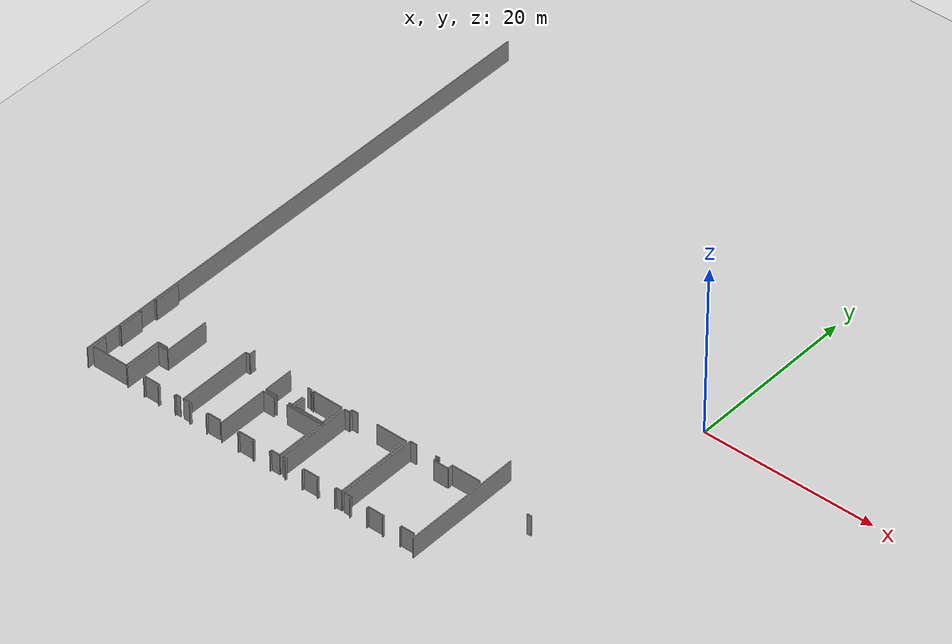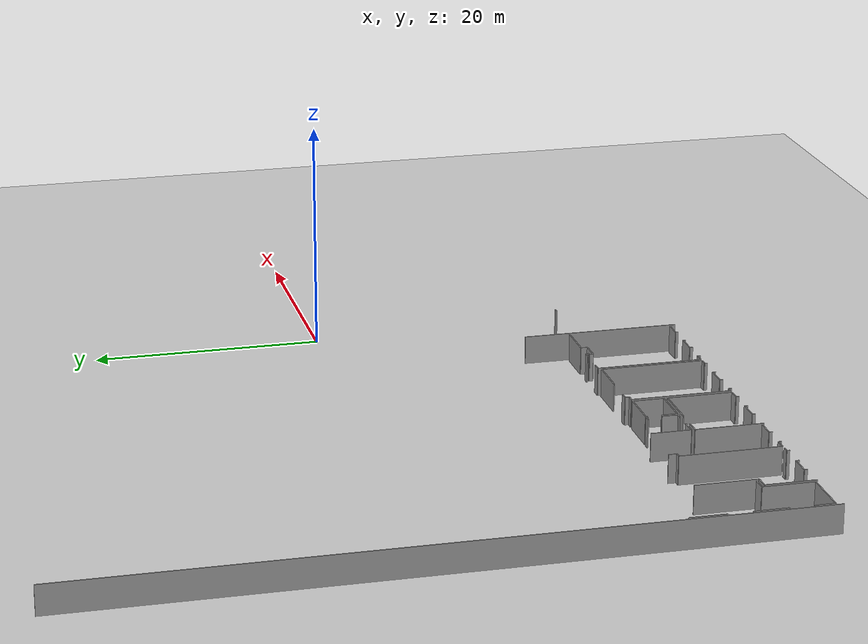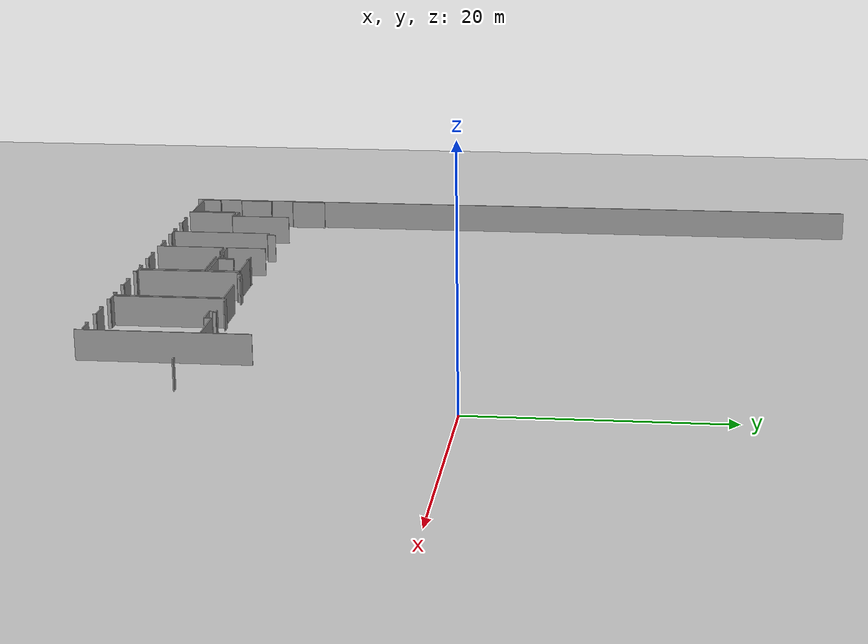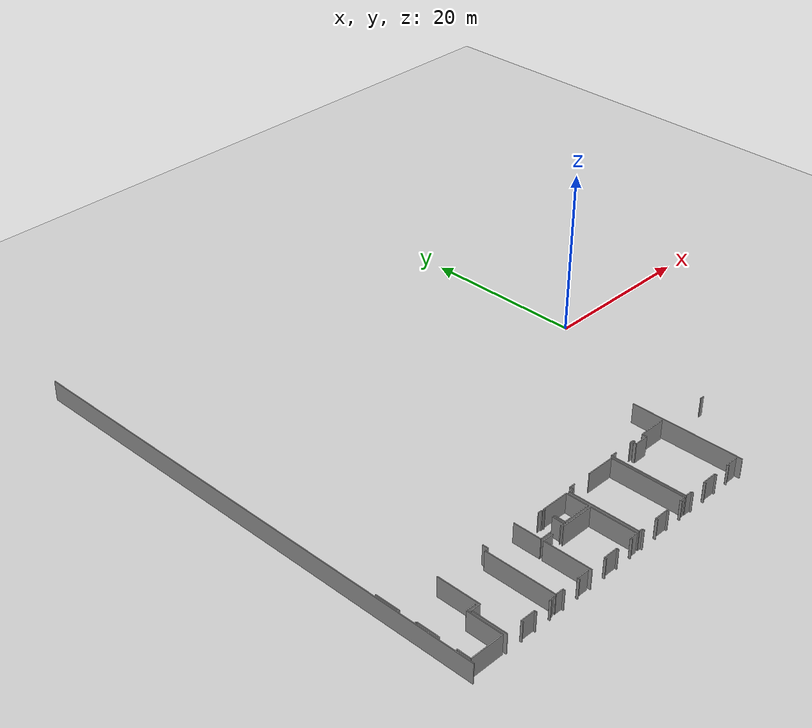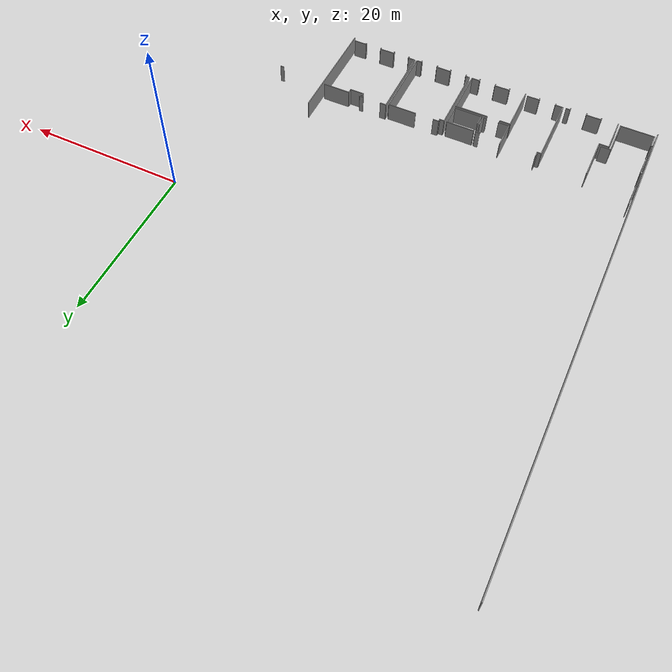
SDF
<sdf version="1.6">
 <world name="default">
  <model name="ground_plane">
   <static>1</static>
   <link name="link">
    <collision name="collision">
     <geometry><plane><normal>0 0 1</normal><size>100 100</size></plane></geometry>
     <surface><friction><ode><mu>100</mu><mu2>50</mu2></ode></friction></surface>
    </collision>
    <visual name="visual">
     <cast_shadows>0</cast_shadows>
     <geometry><plane><normal>0 0 1</normal><size>100 100</size></plane></geometry>
     <material>
      <script><uri>file://media/materials/scripts/gazebo.material</uri><name>Gazebo/Grey</name></script>
     </material>
    </visual>
   </link>
  </model>
  <model name="0510032260_A_40_1_102">
   <static>1</static>
   <link name="Wall_49">
    <collision name="Wall_49_Collision">
     <geometry><box><size>4.22320516319 0.1 2.5</size></box></geometry>
     <pose>2.1116025816 0 1.25 0 0 0</pose>
    </collision>
    <visual name="Wall_49_Visual">
     <pose>2.1116025816 0 1.25 0 0 0</pose>
     <geometry><box><size>4.22320516319 0.1 2.5</size></box></geometry>
     <material>
      <script><uri>file://media/materials/scripts/gazebo.material</uri><name>Gazebo/Grey</name></script>
      <ambient>1 1 1 1</ambient>
     </material>
    </visual>
    <pose>4.49684915946 -60.9838999346 0 0 0 3.14159265359</pose>
   </link>
   <link name="Wall_50">
    <collision name="Wall_50_Collision">
     <geometry><box><size>1.64313319837 0.1 2.5</size></box></geometry>
     <pose>0.821566599186 0 1.25 0 0 0</pose>
    </collision>
    <visual name="Wall_50_Visual">
     <pose>0.821566599186 0 1.25 0 0 0</pose>
     <geometry><box><size>1.64313319837 0.1 2.5</size></box></geometry>
     <material>
      <script><uri>file://media/materials/scripts/gazebo.material</uri><name>Gazebo/Grey</name></script>
      <ambient>1 1 1 1</ambient>
     </material>
    </visual>
    <pose>0.273643996268 -60.9838999346 0 0 0 1.57079632679</pose>
   </link>
   <link name="Wall_51">
    <collision name="Wall_51_Collision">
     <geometry><box><size>0.254097996535 0.1 2.5</size></box></geometry>
     <pose>0.127048998268 0 1.25 0 0 0</pose>
    </collision>
    <visual name="Wall_51_Visual">
     <pose>0.127048998268 0 1.25 0 0 0</pose>
     <geometry><box><size>0.254097996535 0.1 2.5</size></box></geometry>
     <material>
      <script><uri>file://media/materials/scripts/gazebo.material</uri><name>Gazebo/Grey</name></script>
      <ambient>1 1 1 1</ambient>
     </material>
    </visual>
    <pose>0.273643996268 -59.3407667363 0 0 0 3.14159265359</pose>
   </link>
   <link name="Wall_52">
    <collision name="Wall_52_Collision">
     <geometry><box><size>0.262221009411 0.1 2.5</size></box></geometry>
     <pose>0.131110504706 0 1.25 0 0 0</pose>
    </collision>
    <visual name="Wall_52_Visual">
     <pose>0.131110504706 0 1.25 0 0 0</pose>
     <geometry><box><size>0.262221009411 0.1 2.5</size></box></geometry>
     <material>
      <script><uri>file://media/materials/scripts/gazebo.material</uri><name>Gazebo/Grey</name></script>
      <ambient>1 1 1 1</ambient>
     </material>
    </visual>
    <pose>0.0195459997335 -57.236398713 0 0 0 0.0</pose>
   </link>
   <link name="Wall_53">
    <collision name="Wall_53_Collision">
     <geometry><box><size>2.84736985728 0.1 2.5</size></box></geometry>
     <pose>1.42368492864 0 1.25 0 0 0</pose>
    </collision>
    <visual name="Wall_53_Visual">
     <pose>1.42368492864 0 1.25 0 0 0</pose>
     <geometry><box><size>2.84736985728 0.1 2.5</size></box></geometry>
     <material>
      <script><uri>file://media/materials/scripts/gazebo.material</uri><name>Gazebo/Grey</name></script>
      <ambient>1 1 1 1</ambient>
     </material>
    </visual>
    <pose>0.281767009145 -57.236398713 0 0 0 1.57079632679</pose>
   </link>
   <link name="Wall_54">
    <collision name="Wall_54_Collision">
     <geometry><box><size>0.281767009145 0.1 2.5</size></box></geometry>
     <pose>0.140883504572 0 1.25 0 0 0</pose>
    </collision>
    <visual name="Wall_54_Visual">
     <pose>0.140883504572 0 1.25 0 0 0</pose>
     <geometry><box><size>0.281767009145 0.1 2.5</size></box></geometry>
     <material>
      <script><uri>file://media/materials/scripts/gazebo.material</uri><name>Gazebo/Grey</name></script>
      <ambient>1 1 1 1</ambient>
     </material>
    </visual>
    <pose>0.281767009145 -54.3890288557 0 0 0 3.14159265359</pose>
   </link>
   <link name="Wall_55">
    <collision name="Wall_55_Collision">
     <geometry><box><size>0.268313269068 0.1 2.5</size></box></geometry>
     <pose>0.134156634534 0 1.25 0 0 0</pose>
    </collision>
    <visual name="Wall_55_Visual">
     <pose>0.134156634534 0 1.25 0 0 0</pose>
     <geometry><box><size>0.268313269068 0.1 2.5</size></box></geometry>
     <material>
      <script><uri>file://media/materials/scripts/gazebo.material</uri><name>Gazebo/Grey</name></script>
      <ambient>1 1 1 1</ambient>
     </material>
    </visual>
    <pose>0.0 -52.2781878066 0 0 0 0.0</pose>
   </link>
   <link name="Wall_56">
    <collision name="Wall_56_Collision">
     <geometry><box><size>3.07621036065 0.1 2.5</size></box></geometry>
     <pose>1.53810518032 0 1.25 0 0 0</pose>
    </collision>
    <visual name="Wall_56_Visual">
     <pose>1.53810518032 0 1.25 0 0 0</pose>
     <geometry><box><size>3.07621036065 0.1 2.5</size></box></geometry>
     <material>
      <script><uri>file://media/materials/scripts/gazebo.material</uri><name>Gazebo/Grey</name></script>
      <ambient>1 1 1 1</ambient>
     </material>
    </visual>
    <pose>0.268313269068 -52.2781878066 0 0 0 1.57079632679</pose>
   </link>
   <link name="Wall_60">
    <collision name="Wall_60_Collision">
     <geometry><box><size>1.19509826942 0.1 2.5</size></box></geometry>
     <pose>0.597549134709 0 1.25 0 0 0</pose>
    </collision>
    <visual name="Wall_60_Visual">
     <pose>0.597549134709 0 1.25 0 0 0</pose>
     <geometry><box><size>1.19509826942 0.1 2.5</size></box></geometry>
     <material>
      <script><uri>file://media/materials/scripts/gazebo.material</uri><name>Gazebo/Grey</name></script>
      <ambient>1 1 1 1</ambient>
     </material>
    </visual>
    <pose>5.70692423387 -56.585034618 0 0 0 3.14159265359</pose>
   </link>
   <link name="Wall_61">
    <collision name="Wall_61_Collision">
     <geometry><box><size>4.39889081231 0.1 2.5</size></box></geometry>
     <pose>2.19944540615 0 1.25 0 0 0</pose>
    </collision>
    <visual name="Wall_61_Visual">
     <pose>2.19944540615 0 1.25 0 0 0</pose>
     <geometry><box><size>4.39889081231 0.1 2.5</size></box></geometry>
     <material>
      <script><uri>file://media/materials/scripts/gazebo.material</uri><name>Gazebo/Grey</name></script>
      <ambient>1 1 1 1</ambient>
     </material>
    </visual>
    <pose>4.51182596445 -56.585034618 0 0 0 -1.57420101097</pose>
   </link>
   <link name="Wall_62">
    <collision name="Wall_62_Collision">
     <geometry><box><size>0.529772746023 0.1 2.5</size></box></geometry>
     <pose>0.264886373011 0 1.25 0 0 0</pose>
    </collision>
    <visual name="Wall_62_Visual">
     <pose>0.264886373011 0 1.25 0 0 0</pose>
     <geometry><box><size>0.529772746023 0.1 2.5</size></box></geometry>
     <material>
      <script><uri>file://media/materials/scripts/gazebo.material</uri><name>Gazebo/Grey</name></script>
      <ambient>1 1 1 1</ambient>
     </material>
    </visual>
    <pose>11.4389790388 -61.0059843759 0 0 0 3.14159265359</pose>
   </link>
   <link name="Wall_63">
    <collision name="Wall_63_Collision">
     <geometry><box><size>0.253844152383 0.1 2.5</size></box></geometry>
     <pose>0.126922076191 0 1.25 0 0 0</pose>
    </collision>
    <visual name="Wall_63_Visual">
     <pose>0.126922076191 0 1.25 0 0 0</pose>
     <geometry><box><size>0.253844152383 0.1 2.5</size></box></geometry>
     <material>
      <script><uri>file://media/materials/scripts/gazebo.material</uri><name>Gazebo/Grey</name></script>
      <ambient>1 1 1 1</ambient>
     </material>
    </visual>
    <pose>10.9092062928 -61.0059843759 0 0 0 -1.57079632679</pose>
   </link>
   <link name="Wall_64">
    <collision name="Wall_64_Collision">
     <geometry><box><size>0.277197814402 0.1 2.5</size></box></geometry>
     <pose>0.138598907201 0 1.25 0 0 0</pose>
    </collision>
    <visual name="Wall_64_Visual">
     <pose>0.138598907201 0 1.25 0 0 0</pose>
     <geometry><box><size>0.277197814402 0.1 2.5</size></box></geometry>
     <material>
      <script><uri>file://media/materials/scripts/gazebo.material</uri><name>Gazebo/Grey</name></script>
      <ambient>1 1 1 1</ambient>
     </material>
    </visual>
    <pose>8.80724978899 -61.2598285283 0 0 0 1.57079632679</pose>
   </link>
   <link name="Wall_65">
    <collision name="Wall_65_Collision">
     <geometry><box><size>1.86588144209 0.1 2.5</size></box></geometry>
     <pose>0.932940721044 0 1.25 0 0 0</pose>
    </collision>
    <visual name="Wall_65_Visual">
     <pose>0.932940721044 0 1.25 0 0 0</pose>
     <geometry><box><size>1.86588144209 0.1 2.5</size></box></geometry>
     <material>
      <script><uri>file://media/materials/scripts/gazebo.material</uri><name>Gazebo/Grey</name></script>
      <ambient>1 1 1 1</ambient>
     </material>
    </visual>
    <pose>8.80724978899 -60.9826307139 0 0 0 3.14159265359</pose>
   </link>
   <link name="Wall_66">
    <collision name="Wall_66_Collision">
     <geometry><box><size>0.259428723735 0.1 2.5</size></box></geometry>
     <pose>0.129714361868 0 1.25 0 0 0</pose>
    </collision>
    <visual name="Wall_66_Visual">
     <pose>0.129714361868 0 1.25 0 0 0</pose>
     <geometry><box><size>0.259428723735 0.1 2.5</size></box></geometry>
     <material>
      <script><uri>file://media/materials/scripts/gazebo.material</uri><name>Gazebo/Grey</name></script>
      <ambient>1 1 1 1</ambient>
     </material>
    </visual>
    <pose>6.9413683469 -60.9826307139 0 0 0 -1.57079632679</pose>
   </link>
   <link name="Wall_67">
    <collision name="Wall_67_Collision">
     <geometry><box><size>4.33959270706 0.1 2.5</size></box></geometry>
     <pose>2.16979635353 0 1.25 0 0 0</pose>
    </collision>
    <visual name="Wall_67_Visual">
     <pose>2.16979635353 0 1.25 0 0 0</pose>
     <geometry><box><size>4.33959270706 0.1 2.5</size></box></geometry>
     <material>
      <script><uri>file://media/materials/scripts/gazebo.material</uri><name>Gazebo/Grey</name></script>
      <ambient>1 1 1 1</ambient>
     </material>
    </visual>
    <pose>4.82735424586 -61.2420594376 0 0 0 1.57079632679</pose>
   </link>
   <link name="Wall_68">
    <collision name="Wall_68_Collision">
     <geometry><box><size>1.18634064616 0.1 2.5</size></box></geometry>
     <pose>0.59317032308 0 1.25 0 0 0</pose>
    </collision>
    <visual name="Wall_68_Visual">
     <pose>0.59317032308 0 1.25 0 0 0</pose>
     <geometry><box><size>1.18634064616 0.1 2.5</size></box></geometry>
     <material>
      <script><uri>file://media/materials/scripts/gazebo.material</uri><name>Gazebo/Grey</name></script>
      <ambient>1 1 1 1</ambient>
     </material>
    </visual>
    <pose>4.82735424586 -56.9024667306 0 0 0 0.0</pose>
   </link>
   <link name="Wall_69">
    <collision name="Wall_69_Collision">
     <geometry><box><size>5.32971182343 0.1 2.5</size></box></geometry>
     <pose>2.66485591171 0 1.25 0 0 0</pose>
    </collision>
    <visual name="Wall_69_Visual">
     <pose>2.66485591171 0 1.25 0 0 0</pose>
     <geometry><box><size>5.32971182343 0.1 2.5</size></box></geometry>
     <material>
      <script><uri>file://media/materials/scripts/gazebo.material</uri><name>Gazebo/Grey</name></script>
      <ambient>1 1 1 1</ambient>
     </material>
    </visual>
    <pose>6.01369489202 -56.9024667306 0 0 0 1.57079632679</pose>
   </link>
   <link name="Wall_85">
    <collision name="Wall_85_Collision">
     <geometry><box><size>1.55479543334 0.1 2.5</size></box></geometry>
     <pose>0.777397716672 0 1.25 0 0 0</pose>
    </collision>
    <visual name="Wall_85_Visual">
     <pose>0.777397716672 0 1.25 0 0 0</pose>
     <geometry><box><size>1.55479543334 0.1 2.5</size></box></geometry>
     <material>
      <script><uri>file://media/materials/scripts/gazebo.material</uri><name>Gazebo/Grey</name></script>
      <ambient>1 1 1 1</ambient>
     </material>
    </visual>
    <pose>16.4837508012 -60.9901191164 0 0 0 3.14159265359</pose>
   </link>
   <link name="Wall_86">
    <collision name="Wall_86_Collision">
     <geometry><box><size>0.278340113088 0.1 2.5</size></box></geometry>
     <pose>0.139170056544 0 1.25 0 0 0</pose>
    </collision>
    <visual name="Wall_86_Visual">
     <pose>0.139170056544 0 1.25 0 0 0</pose>
     <geometry><box><size>0.278340113088 0.1 2.5</size></box></geometry>
     <material>
      <script><uri>file://media/materials/scripts/gazebo.material</uri><name>Gazebo/Grey</name></script>
      <ambient>1 1 1 1</ambient>
     </material>
    </visual>
    <pose>14.9289553679 -60.9901191164 0 0 0 -1.57079632679</pose>
   </link>
   <link name="Wall_87">
    <collision name="Wall_87_Collision">
     <geometry><box><size>0.280370866307 0.1 2.5</size></box></geometry>
     <pose>0.140185433153 0 1.25 0 0 0</pose>
    </collision>
    <visual name="Wall_87_Visual">
     <pose>0.140185433153 0 1.25 0 0 0</pose>
     <geometry><box><size>0.280370866307 0.1 2.5</size></box></geometry>
     <material>
      <script><uri>file://media/materials/scripts/gazebo.material</uri><name>Gazebo/Grey</name></script>
      <ambient>1 1 1 1</ambient>
     </material>
    </visual>
    <pose>12.8134182019 -61.2684592295 0 0 0 1.57079632679</pose>
   </link>
   <link name="Wall_88">
    <collision name="Wall_88_Collision">
     <geometry><box><size>0.986946064464 0.1 2.5</size></box></geometry>
     <pose>0.493473032232 0 1.25 0 0 0</pose>
    </collision>
    <visual name="Wall_88_Visual">
     <pose>0.493473032232 0 1.25 0 0 0</pose>
     <geometry><box><size>0.986946064464 0.1 2.5</size></box></geometry>
     <material>
      <script><uri>file://media/materials/scripts/gazebo.material</uri><name>Gazebo/Grey</name></script>
      <ambient>1 1 1 1</ambient>
     </material>
    </visual>
    <pose>12.8134182019 -60.9880883631 0 0 0 3.14159265359</pose>
   </link>
   <link name="Wall_89">
    <collision name="Wall_89_Collision">
     <geometry><box><size>8.70444290728 0.1 2.5</size></box></geometry>
     <pose>4.35222145364 0 1.25 0 0 0</pose>
    </collision>
    <visual name="Wall_89_Visual">
     <pose>4.35222145364 0 1.25 0 0 0</pose>
     <geometry><box><size>8.70444290728 0.1 2.5</size></box></geometry>
     <material>
      <script><uri>file://media/materials/scripts/gazebo.material</uri><name>Gazebo/Grey</name></script>
      <ambient>1 1 1 1</ambient>
     </material>
    </visual>
    <pose>11.8264721374 -60.9880883631 0 0 0 1.57079632679</pose>
   </link>
   <link name="Wall_90">
    <collision name="Wall_90_Collision">
     <geometry><box><size>0.480780824613 0.1 2.5</size></box></geometry>
     <pose>0.240390412306 0 1.25 0 0 0</pose>
    </collision>
    <visual name="Wall_90_Visual">
     <pose>0.240390412306 0 1.25 0 0 0</pose>
     <geometry><box><size>0.480780824613 0.1 2.5</size></box></geometry>
     <material>
      <script><uri>file://media/materials/scripts/gazebo.material</uri><name>Gazebo/Grey</name></script>
      <ambient>1 1 1 1</ambient>
     </material>
    </visual>
    <pose>11.8264721374 -52.2836454559 0 0 0 0.0</pose>
   </link>
   <link name="Wall_91">
    <collision name="Wall_91_Collision">
     <geometry><box><size>0.713302068195 0.1 2.5</size></box></geometry>
     <pose>0.356651034098 0 1.25 0 0 0</pose>
    </collision>
    <visual name="Wall_91_Visual">
     <pose>0.356651034098 0 1.25 0 0 0</pose>
     <geometry><box><size>0.713302068195 0.1 2.5</size></box></geometry>
     <material>
      <script><uri>file://media/materials/scripts/gazebo.material</uri><name>Gazebo/Grey</name></script>
      <ambient>1 1 1 1</ambient>
     </material>
    </visual>
    <pose>12.307252962 -52.2836454559 0 0 0 1.57079632679</pose>
   </link>
   <link name="Wall_95">
    <collision name="Wall_95_Collision">
     <geometry><box><size>0.380766228574 0.1 2.5</size></box></geometry>
     <pose>0.190383114287 0 1.25 0 0 0</pose>
    </collision>
    <visual name="Wall_95_Visual">
     <pose>0.190383114287 0 1.25 0 0 0</pose>
     <geometry><box><size>0.380766228574 0.1 2.5</size></box></geometry>
     <material>
      <script><uri>file://media/materials/scripts/gazebo.material</uri><name>Gazebo/Grey</name></script>
      <ambient>1 1 1 1</ambient>
     </material>
    </visual>
    <pose>20.1397412059 -54.9997778864 0 0 0 3.14159265359</pose>
   </link>
   <link name="Wall_96">
    <collision name="Wall_96_Collision">
     <geometry><box><size>1.37228148778 0.1 2.5</size></box></geometry>
     <pose>0.68614074389 0 1.25 0 0 0</pose>
    </collision>
    <visual name="Wall_96_Visual">
     <pose>0.68614074389 0 1.25 0 0 0</pose>
     <geometry><box><size>1.37228148778 0.1 2.5</size></box></geometry>
     <material>
      <script><uri>file://media/materials/scripts/gazebo.material</uri><name>Gazebo/Grey</name></script>
      <ambient>1 1 1 1</ambient>
     </material>
    </visual>
    <pose>18.2015141804 -54.9997778864 0 0 0 3.14159265359</pose>
   </link>
   <link name="Wall_97">
    <collision name="Wall_97_Collision">
     <geometry><box><size>3.43768443364 0.1 2.5</size></box></geometry>
     <pose>1.71884221682 0 1.25 0 0 0</pose>
    </collision>
    <visual name="Wall_97_Visual">
     <pose>1.71884221682 0 1.25 0 0 0</pose>
     <geometry><box><size>3.43768443364 0.1 2.5</size></box></geometry>
     <material>
      <script><uri>file://media/materials/scripts/gazebo.material</uri><name>Gazebo/Grey</name></script>
      <ambient>1 1 1 1</ambient>
     </material>
    </visual>
    <pose>16.8292326926 -54.9997778864 0 0 0 1.57079632679</pose>
   </link>
   <link name="Wall_101">
    <collision name="Wall_101_Collision">
     <geometry><box><size>0.534088096613 0.1 2.5</size></box></geometry>
     <pose>0.267044048307 0 1.25 0 0 0</pose>
    </collision>
    <visual name="Wall_101_Visual">
     <pose>0.267044048307 0 1.25 0 0 0</pose>
     <geometry><box><size>0.534088096613 0.1 2.5</size></box></geometry>
     <material>
      <script><uri>file://media/materials/scripts/gazebo.material</uri><name>Gazebo/Grey</name></script>
      <ambient>1 1 1 1</ambient>
     </material>
    </visual>
    <pose>19.6477912386 -52.2700647937 0 0 0 0.0</pose>
   </link>
   <link name="Wall_102">
    <collision name="Wall_102_Collision">
     <geometry><box><size>0.166902530192 0.1 2.5</size></box></geometry>
     <pose>0.0834512650958 0 1.25 0 0 0</pose>
    </collision>
    <visual name="Wall_102_Visual">
     <pose>0.0834512650958 0 1.25 0 0 0</pose>
     <geometry><box><size>0.166902530192 0.1 2.5</size></box></geometry>
     <material>
      <script><uri>file://media/materials/scripts/gazebo.material</uri><name>Gazebo/Grey</name></script>
      <ambient>1 1 1 1</ambient>
     </material>
    </visual>
    <pose>20.1818793352 -52.2700647937 0 0 0 -1.57079632679</pose>
   </link>
   <link name="Wall_103">
    <collision name="Wall_103_Collision">
     <geometry><box><size>1.37838338343 0.1 2.5</size></box></geometry>
     <pose>0.689191691715 0 1.25 0 0 0</pose>
    </collision>
    <visual name="Wall_103_Visual">
     <pose>0.689191691715 0 1.25 0 0 0</pose>
     <geometry><box><size>1.37838338343 0.1 2.5</size></box></geometry>
     <material>
      <script><uri>file://media/materials/scripts/gazebo.material</uri><name>Gazebo/Grey</name></script>
      <ambient>1 1 1 1</ambient>
     </material>
    </visual>
    <pose>20.1818793352 -53.6220387493 0 0 0 -1.6013717792</pose>
   </link>
   <link name="Wall_104">
    <collision name="Wall_104_Collision">
     <geometry><box><size>1.01537660953 0.1 2.5</size></box></geometry>
     <pose>0.507688304765 0 1.25 0 0 0</pose>
    </collision>
    <visual name="Wall_104_Visual">
     <pose>0.507688304765 0 1.25 0 0 0</pose>
     <geometry><box><size>1.01537660953 0.1 2.5</size></box></geometry>
     <material>
      <script><uri>file://media/materials/scripts/gazebo.material</uri><name>Gazebo/Grey</name></script>
      <ambient>1 1 1 1</ambient>
     </material>
    </visual>
    <pose>23.9435958293 -60.9949421553 0 0 0 3.14159265359</pose>
   </link>
   <link name="Wall_105">
    <collision name="Wall_105_Collision">
     <geometry><box><size>0.263109463945 0.1 2.5</size></box></geometry>
     <pose>0.131554731972 0 1.25 0 0 0</pose>
    </collision>
    <visual name="Wall_105_Visual">
     <pose>0.131554731972 0 1.25 0 0 0</pose>
     <geometry><box><size>0.263109463945 0.1 2.5</size></box></geometry>
     <material>
      <script><uri>file://media/materials/scripts/gazebo.material</uri><name>Gazebo/Grey</name></script>
      <ambient>1 1 1 1</ambient>
     </material>
    </visual>
    <pose>22.9282192198 -60.9949421553 0 0 0 -1.57079632679</pose>
   </link>
   <link name="Wall_106">
    <collision name="Wall_106_Collision">
     <geometry><box><size>0.267044048307 0.1 2.5</size></box></geometry>
     <pose>0.133522024153 0 1.25 0 0 0</pose>
    </collision>
    <visual name="Wall_106_Visual">
     <pose>0.133522024153 0 1.25 0 0 0</pose>
     <geometry><box><size>0.267044048307 0.1 2.5</size></box></geometry>
     <material>
      <script><uri>file://media/materials/scripts/gazebo.material</uri><name>Gazebo/Grey</name></script>
      <ambient>1 1 1 1</ambient>
     </material>
    </visual>
    <pose>20.807859015 -61.2580516192 0 0 0 1.57079632679</pose>
   </link>
   <link name="Wall_107">
    <collision name="Wall_107_Collision">
     <geometry><box><size>1.8860620522 0.1 2.5</size></box></geometry>
     <pose>0.943031026102 0 1.25 0 0 0</pose>
    </collision>
    <visual name="Wall_107_Visual">
     <pose>0.943031026102 0 1.25 0 0 0</pose>
     <geometry><box><size>1.8860620522 0.1 2.5</size></box></geometry>
     <material>
      <script><uri>file://media/materials/scripts/gazebo.material</uri><name>Gazebo/Grey</name></script>
      <ambient>1 1 1 1</ambient>
     </material>
    </visual>
    <pose>20.807859015 -60.9910075709 0 0 0 3.14159265359</pose>
   </link>
   <link name="Wall_108">
    <collision name="Wall_108_Collision">
     <geometry><box><size>0.267044048307 0.1 2.5</size></box></geometry>
     <pose>0.133522024153 0 1.25 0 0 0</pose>
    </collision>
    <visual name="Wall_108_Visual">
     <pose>0.133522024153 0 1.25 0 0 0</pose>
     <geometry><box><size>0.267044048307 0.1 2.5</size></box></geometry>
     <material>
      <script><uri>file://media/materials/scripts/gazebo.material</uri><name>Gazebo/Grey</name></script>
      <ambient>1 1 1 1</ambient>
     </material>
    </visual>
    <pose>18.9217969628 -60.9910075709 0 0 0 -1.57079632679</pose>
   </link>
   <link name="Wall_109">
    <collision name="Wall_109_Collision">
     <geometry><box><size>5.93030708796 0.1 2.5</size></box></geometry>
     <pose>2.96515354398 0 1.25 0 0 0</pose>
    </collision>
    <visual name="Wall_109_Visual">
     <pose>2.96515354398 0 1.25 0 0 0</pose>
     <geometry><box><size>5.93030708796 0.1 2.5</size></box></geometry>
     <material>
      <script><uri>file://media/materials/scripts/gazebo.material</uri><name>Gazebo/Grey</name></script>
      <ambient>1 1 1 1</ambient>
     </material>
    </visual>
    <pose>16.8042290436 -61.2580516192 0 0 0 1.57079632679</pose>
   </link>
   <link name="Wall_110">
    <collision name="Wall_110_Collision">
     <geometry><box><size>1.36466616321 0.1 2.5</size></box></geometry>
     <pose>0.682333081605 0 1.25 0 0 0</pose>
    </collision>
    <visual name="Wall_110_Visual">
     <pose>0.682333081605 0 1.25 0 0 0</pose>
     <geometry><box><size>1.36466616321 0.1 2.5</size></box></geometry>
     <material>
      <script><uri>file://media/materials/scripts/gazebo.material</uri><name>Gazebo/Grey</name></script>
      <ambient>1 1 1 1</ambient>
     </material>
    </visual>
    <pose>16.8042290436 -55.3277445312 0 0 0 0.0</pose>
   </link>
   <link name="Wall_111">
    <collision name="Wall_111_Collision">
     <geometry><box><size>4.16532869645 0.1 2.5</size></box></geometry>
     <pose>2.08266434822 0 1.25 0 0 0</pose>
    </collision>
    <visual name="Wall_111_Visual">
     <pose>2.08266434822 0 1.25 0 0 0</pose>
     <geometry><box><size>4.16532869645 0.1 2.5</size></box></geometry>
     <material>
      <script><uri>file://media/materials/scripts/gazebo.material</uri><name>Gazebo/Grey</name></script>
      <ambient>1 1 1 1</ambient>
     </material>
    </visual>
    <pose>19.7726825615 -55.3277445312 0 0 0 0.0</pose>
   </link>
   <link name="Wall_112">
    <collision name="Wall_112_Collision">
     <geometry><box><size>5.66720037559 0.1 2.5</size></box></geometry>
     <pose>2.8336001878 0 1.25 0 0 0</pose>
    </collision>
    <visual name="Wall_112_Visual">
     <pose>2.8336001878 0 1.25 0 0 0</pose>
     <geometry><box><size>5.66720037559 0.1 2.5</size></box></geometry>
     <material>
      <script><uri>file://media/materials/scripts/gazebo.material</uri><name>Gazebo/Grey</name></script>
      <ambient>1 1 1 1</ambient>
     </material>
    </visual>
    <pose>23.938011258 -55.3277445312 0 0 0 -1.56981090685</pose>
   </link>
   <link name="Wall_113">
    <collision name="Wall_113_Collision">
     <geometry><box><size>3.49314938094 0.1 2.5</size></box></geometry>
     <pose>1.74657469047 0 1.25 0 0 0</pose>
    </collision>
    <visual name="Wall_113_Visual">
     <pose>1.74657469047 0 1.25 0 0 0</pose>
     <geometry><box><size>3.49314938094 0.1 2.5</size></box></geometry>
     <material>
      <script><uri>file://media/materials/scripts/gazebo.material</uri><name>Gazebo/Grey</name></script>
      <ambient>1 1 1 1</ambient>
     </material>
    </visual>
    <pose>23.9406766216 -55.0015547954 0 0 0 3.14159265359</pose>
   </link>
   <link name="Wall_114">
    <collision name="Wall_114_Collision">
     <geometry><box><size>1.35743160487 0.1 2.5</size></box></geometry>
     <pose>0.678715802433 0 1.25 0 0 0</pose>
    </collision>
    <visual name="Wall_114_Visual">
     <pose>0.678715802433 0 1.25 0 0 0</pose>
     <geometry><box><size>1.35743160487 0.1 2.5</size></box></geometry>
     <material>
      <script><uri>file://media/materials/scripts/gazebo.material</uri><name>Gazebo/Grey</name></script>
      <ambient>1 1 1 1</ambient>
     </material>
    </visual>
    <pose>20.4475272407 -55.0015547954 0 0 0 1.57079632679</pose>
   </link>
   <link name="Wall_115">
    <collision name="Wall_115_Collision">
     <geometry><box><size>0.176802452135 0.1 2.5</size></box></geometry>
     <pose>0.0884012260673 0 1.25 0 0 0</pose>
    </collision>
    <visual name="Wall_115_Visual">
     <pose>0.0884012260673 0 1.25 0 0 0</pose>
     <geometry><box><size>0.176802452135 0.1 2.5</size></box></geometry>
     <material>
      <script><uri>file://media/materials/scripts/gazebo.material</uri><name>Gazebo/Grey</name></script>
      <ambient>1 1 1 1</ambient>
     </material>
    </visual>
    <pose>20.4475272407 -52.4645094144 0 0 0 1.57079632679</pose>
   </link>
   <link name="Wall_116">
    <collision name="Wall_116_Collision">
     <geometry><box><size>3.48731096543 0.1 2.5</size></box></geometry>
     <pose>1.74365548272 0 1.25 0 0 0</pose>
    </collision>
    <visual name="Wall_116_Visual">
     <pose>1.74365548272 0 1.25 0 0 0</pose>
     <geometry><box><size>3.48731096543 0.1 2.5</size></box></geometry>
     <material>
      <script><uri>file://media/materials/scripts/gazebo.material</uri><name>Gazebo/Grey</name></script>
      <ambient>1 1 1 1</ambient>
     </material>
    </visual>
    <pose>20.4475272407 -52.2877069623 0 0 0 0.0</pose>
   </link>
   <link name="Wall_117">
    <collision name="Wall_117_Collision">
     <geometry><box><size>2.71385411333 0.1 2.5</size></box></geometry>
     <pose>1.35692705667 0 1.25 0 0 0</pose>
    </collision>
    <visual name="Wall_117_Visual">
     <pose>1.35692705667 0 1.25 0 0 0</pose>
     <geometry><box><size>2.71385411333 0.1 2.5</size></box></geometry>
     <material>
      <script><uri>file://media/materials/scripts/gazebo.material</uri><name>Gazebo/Grey</name></script>
      <ambient>1 1 1 1</ambient>
     </material>
    </visual>
    <pose>23.9348382061 -52.2877069623 0 0 0 -1.56864498786</pose>
   </link>
   <link name="Wall_144">
    <collision name="Wall_144_Collision">
     <geometry><box><size>0.671417783052 0.1 2.5</size></box></geometry>
     <pose>0.335708891526 0 1.25 0 0 0</pose>
    </collision>
    <visual name="Wall_144_Visual">
     <pose>0.335708891526 0 1.25 0 0 0</pose>
     <geometry><box><size>0.671417783052 0.1 2.5</size></box></geometry>
     <material>
      <script><uri>file://media/materials/scripts/gazebo.material</uri><name>Gazebo/Grey</name></script>
      <ambient>1 1 1 1</ambient>
     </material>
    </visual>
    <pose>31.6179391662 -60.9822499476 0 0 0 3.14159265359</pose>
   </link>
   <link name="Wall_145">
    <collision name="Wall_145_Collision">
     <geometry><box><size>0.257397970516 0.1 2.5</size></box></geometry>
     <pose>0.128698985258 0 1.25 0 0 0</pose>
    </collision>
    <visual name="Wall_145_Visual">
     <pose>0.128698985258 0 1.25 0 0 0</pose>
     <geometry><box><size>0.257397970516 0.1 2.5</size></box></geometry>
     <material>
      <script><uri>file://media/materials/scripts/gazebo.material</uri><name>Gazebo/Grey</name></script>
      <ambient>1 1 1 1</ambient>
     </material>
    </visual>
    <pose>30.9465213832 -60.9822499476 0 0 0 -1.57079632679</pose>
   </link>
   <link name="Wall_146">
    <collision name="Wall_146_Collision">
     <geometry><box><size>0.268694035297 0.1 2.5</size></box></geometry>
     <pose>0.134347017649 0 1.25 0 0 0</pose>
    </collision>
    <visual name="Wall_146_Visual">
     <pose>0.134347017649 0 1.25 0 0 0</pose>
     <geometry><box><size>0.268694035297 0.1 2.5</size></box></geometry>
     <material>
      <script><uri>file://media/materials/scripts/gazebo.material</uri><name>Gazebo/Grey</name></script>
      <ambient>1 1 1 1</ambient>
     </material>
    </visual>
    <pose>28.787196101 -61.2396479182 0 0 0 1.57079632679</pose>
   </link>
   <link name="Wall_147">
    <collision name="Wall_147_Collision">
     <geometry><box><size>1.85217385786 0.1 2.5</size></box></geometry>
     <pose>0.92608692893 0 1.25 0 0 0</pose>
    </collision>
    <visual name="Wall_147_Visual">
     <pose>0.92608692893 0 1.25 0 0 0</pose>
     <geometry><box><size>1.85217385786 0.1 2.5</size></box></geometry>
     <material>
      <script><uri>file://media/materials/scripts/gazebo.material</uri><name>Gazebo/Grey</name></script>
      <ambient>1 1 1 1</ambient>
     </material>
    </visual>
    <pose>28.787196101 -60.9709538829 0 0 0 3.14159265359</pose>
   </link>
   <link name="Wall_148">
    <collision name="Wall_148_Collision">
     <geometry><box><size>0.287859268802 0.1 2.5</size></box></geometry>
     <pose>0.143929634401 0 1.25 0 0 0</pose>
    </collision>
    <visual name="Wall_148_Visual">
     <pose>0.143929634401 0 1.25 0 0 0</pose>
     <geometry><box><size>0.287859268802 0.1 2.5</size></box></geometry>
     <material>
      <script><uri>file://media/materials/scripts/gazebo.material</uri><name>Gazebo/Grey</name></script>
      <ambient>1 1 1 1</ambient>
     </material>
    </visual>
    <pose>26.9350222431 -60.9709538829 0 0 0 -1.57079632679</pose>
   </link>
   <link name="Wall_149">
    <collision name="Wall_149_Collision">
     <geometry><box><size>0.278340113088 0.1 2.5</size></box></geometry>
     <pose>0.139170056544 0 1.25 0 0 0</pose>
    </collision>
    <visual name="Wall_149_Visual">
     <pose>0.139170056544 0 1.25 0 0 0</pose>
     <geometry><box><size>0.278340113088 0.1 2.5</size></box></geometry>
     <material>
      <script><uri>file://media/materials/scripts/gazebo.material</uri><name>Gazebo/Grey</name></script>
      <ambient>1 1 1 1</ambient>
     </material>
    </visual>
    <pose>24.7948621944 -61.2588131517 0 0 0 1.57079632679</pose>
   </link>
   <link name="Wall_150">
    <collision name="Wall_150_Collision">
     <geometry><box><size>0.470373214365 0.1 2.5</size></box></geometry>
     <pose>0.235186607183 0 1.25 0 0 0</pose>
    </collision>
    <visual name="Wall_150_Visual">
     <pose>0.235186607183 0 1.25 0 0 0</pose>
     <geometry><box><size>0.470373214365 0.1 2.5</size></box></geometry>
     <material>
      <script><uri>file://media/materials/scripts/gazebo.material</uri><name>Gazebo/Grey</name></script>
      <ambient>1 1 1 1</ambient>
     </material>
    </visual>
    <pose>24.7948621944 -60.9804730386 0 0 0 3.14159265359</pose>
   </link>
   <link name="Wall_151">
    <collision name="Wall_151_Collision">
     <geometry><box><size>8.68603920623 0.1 2.5</size></box></geometry>
     <pose>4.34301960311 0 1.25 0 0 0</pose>
    </collision>
    <visual name="Wall_151_Visual">
     <pose>4.34301960311 0 1.25 0 0 0</pose>
     <geometry><box><size>8.68603920623 0.1 2.5</size></box></geometry>
     <material>
      <script><uri>file://media/materials/scripts/gazebo.material</uri><name>Gazebo/Grey</name></script>
      <ambient>1 1 1 1</ambient>
     </material>
    </visual>
    <pose>24.32448898 -60.9804730386 0 0 0 1.57079632679</pose>
   </link>
   <link name="Wall_152">
    <collision name="Wall_152_Collision">
     <geometry><box><size>0.578764667432 0.1 2.5</size></box></geometry>
     <pose>0.289382333716 0 1.25 0 0 0</pose>
    </collision>
    <visual name="Wall_152_Visual">
     <pose>0.289382333716 0 1.25 0 0 0</pose>
     <geometry><box><size>0.578764667432 0.1 2.5</size></box></geometry>
     <material>
      <script><uri>file://media/materials/scripts/gazebo.material</uri><name>Gazebo/Grey</name></script>
      <ambient>1 1 1 1</ambient>
     </material>
    </visual>
    <pose>24.32448898 -52.2944338323 0 0 0 0.0</pose>
   </link>
   <link name="Wall_153">
    <collision name="Wall_153_Collision">
     <geometry><box><size>0.362870215831 0.1 2.5</size></box></geometry>
     <pose>0.181435107915 0 1.25 0 0 0</pose>
    </collision>
    <visual name="Wall_153_Visual">
     <pose>0.181435107915 0 1.25 0 0 0</pose>
     <geometry><box><size>0.362870215831 0.1 2.5</size></box></geometry>
     <material>
      <script><uri>file://media/materials/scripts/gazebo.material</uri><name>Gazebo/Grey</name></script>
      <ambient>1 1 1 1</ambient>
     </material>
    </visual>
    <pose>24.9032536474 -52.2944338323 0 0 0 1.57079632679</pose>
   </link>
   <link name="Wall_154">
    <collision name="Wall_154_Collision">
     <geometry><box><size>0.740082626272 0.1 2.5</size></box></geometry>
     <pose>0.370041313136 0 1.25 0 0 0</pose>
    </collision>
    <visual name="Wall_154_Visual">
     <pose>0.370041313136 0 1.25 0 0 0</pose>
     <geometry><box><size>0.740082626272 0.1 2.5</size></box></geometry>
     <material>
      <script><uri>file://media/materials/scripts/gazebo.material</uri><name>Gazebo/Grey</name></script>
      <ambient>1 1 1 1</ambient>
     </material>
    </visual>
    <pose>24.9032536474 -51.9315636165 0 0 0 0.0</pose>
   </link>
   <link name="Wall_155">
    <collision name="Wall_155_Collision">
     <geometry><box><size>3.61727917145 0.1 2.5</size></box></geometry>
     <pose>1.80863958573 0 1.25 0 0 0</pose>
    </collision>
    <visual name="Wall_155_Visual">
     <pose>1.80863958573 0 1.25 0 0 0</pose>
     <geometry><box><size>3.61727917145 0.1 2.5</size></box></geometry>
     <material>
      <script><uri>file://media/materials/scripts/gazebo.material</uri><name>Gazebo/Grey</name></script>
      <ambient>1 1 1 1</ambient>
     </material>
    </visual>
    <pose>27.9835255145 -51.9315636165 0 0 0 0.0</pose>
   </link>
   <link name="Wall_156">
    <collision name="Wall_156_Collision">
     <geometry><box><size>9.05070255035 0.1 2.5</size></box></geometry>
     <pose>4.52535127517 0 1.25 0 0 0</pose>
    </collision>
    <visual name="Wall_156_Visual">
     <pose>4.52535127517 0 1.25 0 0 0</pose>
     <geometry><box><size>9.05070255035 0.1 2.5</size></box></geometry>
     <material>
      <script><uri>file://media/materials/scripts/gazebo.material</uri><name>Gazebo/Grey</name></script>
      <ambient>1 1 1 1</ambient>
     </material>
    </visual>
    <pose>31.600804686 -51.9315636165 0 0 0 -1.56890315989</pose>
   </link>
   <link name="Wall_157">
    <collision name="Wall_157_Collision">
     <geometry><box><size>1.57256452401 0.1 2.5</size></box></geometry>
     <pose>0.786282262005 0 1.25 0 0 0</pose>
    </collision>
    <visual name="Wall_157_Visual">
     <pose>0.786282262005 0 1.25 0 0 0</pose>
     <geometry><box><size>1.57256452401 0.1 2.5</size></box></geometry>
     <material>
      <script><uri>file://media/materials/scripts/gazebo.material</uri><name>Gazebo/Grey</name></script>
      <ambient>1 1 1 1</ambient>
     </material>
    </visual>
    <pose>40.498042227 -61.0031920902 0 0 0 3.14159265359</pose>
   </link>
   <link name="Wall_158">
    <collision name="Wall_158_Collision">
     <geometry><box><size>0.238105814935 0.1 2.5</size></box></geometry>
     <pose>0.119052907467 0 1.25 0 0 0</pose>
    </collision>
    <visual name="Wall_158_Visual">
     <pose>0.119052907467 0 1.25 0 0 0</pose>
     <geometry><box><size>0.238105814935 0.1 2.5</size></box></geometry>
     <material>
      <script><uri>file://media/materials/scripts/gazebo.material</uri><name>Gazebo/Grey</name></script>
      <ambient>1 1 1 1</ambient>
     </material>
    </visual>
    <pose>38.925477703 -61.0031920902 0 0 0 -1.57079632679</pose>
   </link>
   <link name="Wall_159">
    <collision name="Wall_159_Collision">
     <geometry><box><size>0.254986451068 0.1 2.5</size></box></geometry>
     <pose>0.127493225534 0 1.25 0 0 0</pose>
    </collision>
    <visual name="Wall_159_Visual">
     <pose>0.127493225534 0 1.25 0 0 0</pose>
     <geometry><box><size>0.254986451068 0.1 2.5</size></box></geometry>
     <material>
      <script><uri>file://media/materials/scripts/gazebo.material</uri><name>Gazebo/Grey</name></script>
      <ambient>1 1 1 1</ambient>
     </material>
    </visual>
    <pose>36.8075290176 -61.2412979052 0 0 0 1.57079632679</pose>
   </link>
   <link name="Wall_160">
    <collision name="Wall_160_Collision">
     <geometry><box><size>1.89304276639 0.1 2.5</size></box></geometry>
     <pose>0.946521383197 0 1.25 0 0 0</pose>
    </collision>
    <visual name="Wall_160_Visual">
     <pose>0.946521383197 0 1.25 0 0 0</pose>
     <geometry><box><size>1.89304276639 0.1 2.5</size></box></geometry>
     <material>
      <script><uri>file://media/materials/scripts/gazebo.material</uri><name>Gazebo/Grey</name></script>
      <ambient>1 1 1 1</ambient>
     </material>
    </visual>
    <pose>36.8075290176 -60.9863114541 0 0 0 3.14159265359</pose>
   </link>
   <link name="Wall_161">
    <collision name="Wall_161_Collision">
     <geometry><box><size>0.268947879449 0.1 2.5</size></box></geometry>
     <pose>0.134473939725 0 1.25 0 0 0</pose>
    </collision>
    <visual name="Wall_161_Visual">
     <pose>0.134473939725 0 1.25 0 0 0</pose>
     <geometry><box><size>0.268947879449 0.1 2.5</size></box></geometry>
     <material>
      <script><uri>file://media/materials/scripts/gazebo.material</uri><name>Gazebo/Grey</name></script>
      <ambient>1 1 1 1</ambient>
     </material>
    </visual>
    <pose>34.9144862512 -60.9863114541 0 0 0 -1.57079632679</pose>
   </link>
   <link name="Wall_162">
    <collision name="Wall_162_Collision">
     <geometry><box><size>0.268947879449 0.1 2.5</size></box></geometry>
     <pose>0.134473939725 0 1.25 0 0 0</pose>
    </collision>
    <visual name="Wall_162_Visual">
     <pose>0.134473939725 0 1.25 0 0 0</pose>
     <geometry><box><size>0.268947879449 0.1 2.5</size></box></geometry>
     <material>
      <script><uri>file://media/materials/scripts/gazebo.material</uri><name>Gazebo/Grey</name></script>
      <ambient>1 1 1 1</ambient>
     </material>
    </visual>
    <pose>32.801868293 -61.2552593335 0 0 0 1.57079632679</pose>
   </link>
   <link name="Wall_163">
    <collision name="Wall_163_Collision">
     <geometry><box><size>0.877920001015 0.1 2.5</size></box></geometry>
     <pose>0.438960000508 0 1.25 0 0 0</pose>
    </collision>
    <visual name="Wall_163_Visual">
     <pose>0.438960000508 0 1.25 0 0 0</pose>
     <geometry><box><size>0.877920001015 0.1 2.5</size></box></geometry>
     <material>
      <script><uri>file://media/materials/scripts/gazebo.material</uri><name>Gazebo/Grey</name></script>
      <ambient>1 1 1 1</ambient>
     </material>
    </visual>
    <pose>32.801868293 -60.9863114541 0 0 0 3.14159265359</pose>
   </link>
   <link name="Wall_164">
    <collision name="Wall_164_Collision">
     <geometry><box><size>9.28980752267 0.1 2.5</size></box></geometry>
     <pose>4.64490376134 0 1.25 0 0 0</pose>
    </collision>
    <visual name="Wall_164_Visual">
     <pose>4.64490376134 0 1.25 0 0 0</pose>
     <geometry><box><size>9.28980752267 0.1 2.5</size></box></geometry>
     <material>
      <script><uri>file://media/materials/scripts/gazebo.material</uri><name>Gazebo/Grey</name></script>
      <ambient>1 1 1 1</ambient>
     </material>
    </visual>
    <pose>31.9239482919 -60.9863114541 0 0 0 1.57079632679</pose>
   </link>
   <link name="Wall_165">
    <collision name="Wall_165_Collision">
     <geometry><box><size>0.768259327186 0.1 2.5</size></box></geometry>
     <pose>0.384129663593 0 1.25 0 0 0</pose>
    </collision>
    <visual name="Wall_165_Visual">
     <pose>0.384129663593 0 1.25 0 0 0</pose>
     <geometry><box><size>0.768259327186 0.1 2.5</size></box></geometry>
     <material>
      <script><uri>file://media/materials/scripts/gazebo.material</uri><name>Gazebo/Grey</name></script>
      <ambient>1 1 1 1</ambient>
     </material>
    </visual>
    <pose>31.9239482919 -51.6965039314 0 0 0 0.0</pose>
   </link>
   <link name="Wall_166">
    <collision name="Wall_166_Collision">
     <geometry><box><size>0.49486917507 0.1 2.5</size></box></geometry>
     <pose>0.247434587535 0 1.25 0 0 0</pose>
    </collision>
    <visual name="Wall_166_Visual">
     <pose>0.247434587535 0 1.25 0 0 0</pose>
     <geometry><box><size>0.49486917507 0.1 2.5</size></box></geometry>
     <material>
      <script><uri>file://media/materials/scripts/gazebo.material</uri><name>Gazebo/Grey</name></script>
      <ambient>1 1 1 1</ambient>
     </material>
    </visual>
    <pose>35.0445813793 -51.6965039314 0 0 0 0.0</pose>
   </link>
   <link name="Wall_167">
    <collision name="Wall_167_Collision">
     <geometry><box><size>0.250544178402 0.1 2.5</size></box></geometry>
     <pose>0.125272089201 0 1.25 0 0 0</pose>
    </collision>
    <visual name="Wall_167_Visual">
     <pose>0.125272089201 0 1.25 0 0 0</pose>
     <geometry><box><size>0.250544178402 0.1 2.5</size></box></geometry>
     <material>
      <script><uri>file://media/materials/scripts/gazebo.material</uri><name>Gazebo/Grey</name></script>
      <ambient>1 1 1 1</ambient>
     </material>
    </visual>
    <pose>35.5394505543 -51.6965039314 0 0 0 -1.57079632679</pose>
   </link>
   <link name="Wall_168">
    <collision name="Wall_168_Collision">
     <geometry><box><size>0.239755801925 0.1 2.5</size></box></geometry>
     <pose>0.119877900963 0 1.25 0 0 0</pose>
    </collision>
    <visual name="Wall_168_Visual">
     <pose>0.119877900963 0 1.25 0 0 0</pose>
     <geometry><box><size>0.239755801925 0.1 2.5</size></box></geometry>
     <material>
      <script><uri>file://media/materials/scripts/gazebo.material</uri><name>Gazebo/Grey</name></script>
      <ambient>1 1 1 1</ambient>
     </material>
    </visual>
    <pose>35.5394505543 -51.9470481098 0 0 0 3.14159265359</pose>
   </link>
   <link name="Wall_169">
    <collision name="Wall_169_Collision">
     <geometry><box><size>0.328093566955 0.1 2.5</size></box></geometry>
     <pose>0.164046783477 0 1.25 0 0 0</pose>
    </collision>
    <visual name="Wall_169_Visual">
     <pose>0.164046783477 0 1.25 0 0 0</pose>
     <geometry><box><size>0.328093566955 0.1 2.5</size></box></geometry>
     <material>
      <script><uri>file://media/materials/scripts/gazebo.material</uri><name>Gazebo/Grey</name></script>
      <ambient>1 1 1 1</ambient>
     </material>
    </visual>
    <pose>35.2996947524 -51.9470481098 0 0 0 -1.57079632679</pose>
   </link>
   <link name="Wall_170">
    <collision name="Wall_170_Collision">
     <geometry><box><size>1.76053611885 0.1 2.5</size></box></geometry>
     <pose>0.880268059425 0 1.25 0 0 0</pose>
    </collision>
    <visual name="Wall_170_Visual">
     <pose>0.880268059425 0 1.25 0 0 0</pose>
     <geometry><box><size>1.76053611885 0.1 2.5</size></box></geometry>
     <material>
      <script><uri>file://media/materials/scripts/gazebo.material</uri><name>Gazebo/Grey</name></script>
      <ambient>1 1 1 1</ambient>
     </material>
    </visual>
    <pose>35.2996947524 -52.2751416768 0 0 0 0.0</pose>
   </link>
   <link name="Wall_171">
    <collision name="Wall_171_Collision">
     <geometry><box><size>0.580541576499 0.1 2.5</size></box></geometry>
     <pose>0.29027078825 0 1.25 0 0 0</pose>
    </collision>
    <visual name="Wall_171_Visual">
     <pose>0.29027078825 0 1.25 0 0 0</pose>
     <geometry><box><size>0.580541576499 0.1 2.5</size></box></geometry>
     <material>
      <script><uri>file://media/materials/scripts/gazebo.material</uri><name>Gazebo/Grey</name></script>
      <ambient>1 1 1 1</ambient>
     </material>
    </visual>
    <pose>37.0602308713 -52.2751416768 0 0 0 1.57079632679</pose>
   </link>
   <link name="Wall_172">
    <collision name="Wall_172_Collision">
     <geometry><box><size>3.43831904402 0.1 2.5</size></box></geometry>
     <pose>1.71915952201 0 1.25 0 0 0</pose>
    </collision>
    <visual name="Wall_172_Visual">
     <pose>1.71915952201 0 1.25 0 0 0</pose>
     <geometry><box><size>3.43831904402 0.1 2.5</size></box></geometry>
     <material>
      <script><uri>file://media/materials/scripts/gazebo.material</uri><name>Gazebo/Grey</name></script>
      <ambient>1 1 1 1</ambient>
     </material>
    </visual>
    <pose>37.0602308713 -51.6946001003 0 0 0 0.0</pose>
   </link>
   <link name="Wall_203">
    <collision name="Wall_203_Collision">
     <geometry><box><size>13.8982211871 0.1 2.5</size></box></geometry>
     <pose>6.94911059355 0 1.25 0 0 0</pose>
    </collision>
    <visual name="Wall_203_Visual">
     <pose>6.94911059355 0 1.25 0 0 0</pose>
     <geometry><box><size>13.8982211871 0.1 2.5</size></box></geometry>
     <material>
      <script><uri>file://media/materials/scripts/gazebo.material</uri><name>Gazebo/Grey</name></script>
      <ambient>1 1 1 1</ambient>
     </material>
    </visual>
    <pose>40.8032898202 -61.5834798226 0 0 0 1.57079632679</pose>
   </link>
   <link name="Wall_220">
    <collision name="Wall_220_Collision">
     <geometry><box><size>0.489411525794 0.1 2.5</size></box></geometry>
     <pose>0.244705762897 0 1.25 0 0 0</pose>
    </collision>
    <visual name="Wall_220_Visual">
     <pose>0.244705762897 0 1.25 0 0 0</pose>
     <geometry><box><size>0.489411525794 0.1 2.5</size></box></geometry>
     <material>
      <script><uri>file://media/materials/scripts/gazebo.material</uri><name>Gazebo/Grey</name></script>
      <ambient>1 1 1 1</ambient>
     </material>
    </visual>
    <pose>46.6570628962 -52.2663840535 0 0 0 0.0</pose>
   </link>
   <link name="Wall_540">
    <collision name="Wall_540_Collision">
     <geometry><box><size>61.5834798226 0.1 2.5</size></box></geometry>
     <pose>30.7917399113 0 1.25 0 0 0</pose>
    </collision>
    <visual name="Wall_540_Visual">
     <pose>30.7917399113 0 1.25 0 0 0</pose>
     <geometry><box><size>61.5834798226 0.1 2.5</size></box></geometry>
     <material>
      <script><uri>file://media/materials/scripts/gazebo.material</uri><name>Gazebo/Grey</name></script>
      <ambient>1 1 1 1</ambient>
     </material>
    </visual>
    <pose>0.0 -61.5834798226 0 0 0 1.57079632679</pose>
   </link>
   <pose>-50.3 30.7834798226 0 0 0 0</pose>
  </model>
 </world>
</sdf>
